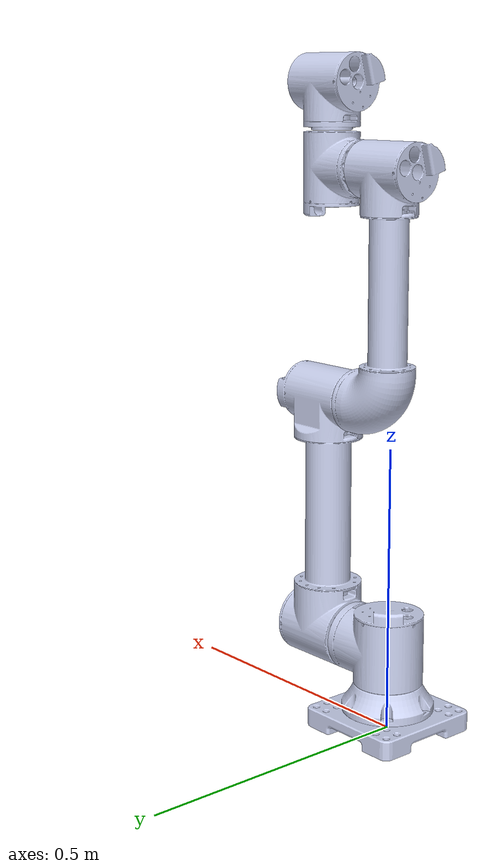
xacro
<?xml version="1.0"?>
<robot xmlns:xacro="http://www.ros.org/wiki/xacro" name="fake_ur_config">

  <xacro:arg name="use_gazebo" default="true" />

  <xacro:include filename="$(find fake_ur_config)/config/fake_ur_config.ros2_control.xacro" />

  <xacro:property name="use_gazebo_prop" value="$(arg use_gazebo)" />
  <xacro:motor_drive use_gazebo="${use_gazebo_prop}"/>

  <xacro:include filename="$(find fake_ur_config)/config/fake_ur_config.urdf" />
</robot>

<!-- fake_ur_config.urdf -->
<robot name="fake_ur" xmlns:xacro="http://www.ros.org/wiki/xacro">

  <xacro:macro name="fake_ur">
  <link
    name="base_link">
    <inertial>
      <origin
        xyz="-1.32903356359508E-12 -5.95336903906293E-12 0.0338776670857649"
        rpy="0 0 0" />
      <mass
        value="1.44940327015999" />
      <inertia
        ixx="0.00492881883825976"
        ixy="8.32451425175137E-10"
        ixz="-2.25385858188084E-13"
        iyy="0.00492878171505367"
        iyz="-2.84223274357211E-13"
        izz="0.00951858321864677" />
    </inertial>
    <visual>
      <origin
        xyz="0 0 0"
        rpy="0 0 0" />
      <geometry>
        <mesh
          filename="package://fake_ur_config/meshes/base_link.STL" />
      </geometry>
      <material
        name="">
        <color
          rgba="0.792156862745098 0.819607843137255 0.933333333333333 1" />
      </material>
    </visual>
  </link>
  <link
    name="link0">
    <inertial>
      <origin
        xyz="0.03008 -0.00078887 -0.15015"
        rpy="0 0 0" />
      <mass
        value="0.55122" />
      <inertia
        ixx="0.0014776"
        ixy="-1.0447E-05"
        ixz="2.7138E-05"
        iyy="0.0014029"
        iyz="-2.7658E-06"
        izz="0.0016816" />
    </inertial>
    <visual>
      <origin
        xyz="0 0 0"
        rpy="0 0 0" />
      <geometry>
        <mesh
          filename="package://fake_ur_config/meshes/link0.STL" />
      </geometry>
      <material
        name="">
        <color
          rgba="0.79216 0.81961 0.93333 1" />
      </material>
    </visual>
  </link>
  <joint
    name="joint0"
    type="revolute">
    <origin
      xyz="0 0 0"
      rpy="-3.1416 0 0" />
    <parent
      link="base_link" />
    <child
      link="link0" />
    <axis
      xyz="0 0 -1" />
    <limit
      lower="${-2*pi}"
      upper="${2*pi}"
      effort="1000"
      velocity="${pi/4}" />
  </joint>
  <link
    name="link1">
    <inertial>
      <origin
        xyz="-0.20372 1.2374E-05 0.062279"
        rpy="0 0 0" />
      <mass
        value="1.3035" />
      <inertia
        ixx="0.0030298"
        ixy="5.2435E-06"
        ixz="-1.254E-05"
        iyy="0.0069434"
        iyz="1.5844E-06"
        izz="0.0073271" />
    </inertial>
    <visual>
      <origin
        xyz="0 0 0"
        rpy="0 0 0" />
      <geometry>
        <mesh
          filename="package://fake_ur_config/meshes/link1.STL" />
      </geometry>
      <material
        name="">
        <color
          rgba="0.79216 0.81961 0.93333 1" />
      </material>
    </visual>
  </link>
  <joint
    name="joint1"
    type="revolute">
    <origin
      xyz="0.222 0 -0.1458"
      rpy="0 -1.5708 0" />
    <parent
      link="link0" />
    <child
      link="link1" />
    <axis
      xyz="0 0 -1" />
    <limit
      lower="${-pi}"
      upper="${pi}"
      effort="1000"
      velocity="${pi/4}" />
  </joint>
  <link
    name="link2">
    <inertial>
      <origin
        xyz="-0.131 0.00035541 0.19747"
        rpy="0 0 0" />
      <mass
        value="1.1247" />
      <inertia
        ixx="0.0018925"
        ixy="4.5428E-06"
        ixz="0.00014485"
        iyy="0.0036587"
        iyz="-2.8498E-06"
        izz="0.003735" />
    </inertial>
    <visual>
      <origin
        xyz="0 0 0"
        rpy="0 0 0" />
      <geometry>
        <mesh
          filename="package://fake_ur_config/meshes/link2.STL" />
      </geometry>
      <material
        name="">
        <color
          rgba="0.79216 0.81961 0.93333 1" />
      </material>
    </visual>
  </link>
  <joint
    name="joint2"
    type="revolute">
    <origin
      xyz="-0.425 0 -0.001"
      rpy="0 0 0" />
    <parent
      link="link1" />
    <child
      link="link2" />
    <axis
      xyz="0 0 1" />
    <limit
      lower="${-pi}"
      upper="${pi}"
      effort="1000"
      velocity="${pi/4}" />
  </joint>
  <link
    name="link3">
    <inertial>
      <origin
        xyz="0.0043197 0.001231 0.05645"
        rpy="0 0 0" />
      <mass
        value="0.32299" />
      <inertia
        ixx="0.00061621"
        ixy="-3.1008E-06"
        ixz="1.9191E-05"
        iyy="0.00058589"
        iyz="-4.5458E-06"
        izz="0.00059346" />
    </inertial>
    <visual>
      <origin
        xyz="0 0 0"
        rpy="0 0 0" />
      <geometry>
        <mesh
          filename="package://fake_ur_config/meshes/link3.STL" />
      </geometry>
      <material
        name="">
        <color
          rgba="0.79216 0.81961 0.93333 1" />
      </material>
    </visual>
  </link>
  <joint
    name="joint3"
    type="revolute">
    <origin
      xyz="-0.392 0 0.15325"
      rpy="-3.1416 0 0" />
    <parent
      link="link2" />
    <child
      link="link3" />
    <axis
      xyz="0 0 1" />
    <limit
      lower="${-pi}"
      upper="${pi}"
      effort="1000"
      velocity="${pi/4}" />
  </joint>
  <link
    name="link4">
    <inertial>
      <origin
        xyz="0.0043201 0.0012307 0.056451"
        rpy="0 0 0" />
      <mass
        value="0.32298" />
      <inertia
        ixx="0.00061621"
        ixy="-3.1003E-06"
        ixz="1.919E-05"
        iyy="0.00058589"
        iyz="-4.5457E-06"
        izz="0.00059346" />
    </inertial>
    <visual>
      <origin
        xyz="0 0 0"
        rpy="0 0 0" />
      <geometry>
        <mesh
          filename="package://fake_ur_config/meshes/link4.STL" />
      </geometry>
      <material
        name="">
        <color
          rgba="0.79216 0.81961 0.93333 1" />
      </material>
    </visual>
  </link>
  <joint
    name="joint4"
    type="revolute">
    <origin
      xyz="-0.05865 0 0.0815"
      rpy="1.5932 1.5708 -1.5484" />
    <parent
      link="link3" />
    <child
      link="link4" />
    <axis
      xyz="0 0 1" />
    <limit
      lower="${-pi}"
      upper="${pi}"
      effort="1000"
      velocity="${pi/4}" />
  </joint>
  <link
    name="link5">
    <inertial>
      <origin
        xyz="-1.0356E-09 1.7E-15 -0.022858"
        rpy="0 0 0" />
      <mass
        value="0.021201" />
      <inertia
        ixx="1.4705E-05"
        ixy="2.6737E-19"
        ixz="-2.7185E-13"
        iyy="1.4705E-05"
        iyz="-1.4643E-18"
        izz="8.7048E-06" />
    </inertial>
    <visual>
      <origin
        xyz="0 0 0"
        rpy="0 0 0" />
      <geometry>
        <mesh
          filename="package://fake_ur_config/meshes/link5.STL" />
      </geometry>
      <material
        name="">
        <color
          rgba="0.79216 0.81961 0.93333 1" />
      </material>
    </visual>
  </link>
  <joint
    name="joint5"
    type="revolute">
    <origin
      xyz="-0.06345 0 0.0815"
      rpy="3.1416 1.5708 0" />
    <parent
      link="link4" />
    <child
      link="link5" />
    <axis
      xyz="0 0 1" />
    <limit
      lower="${-pi}"
      upper="${pi}"
      effort="1000"
      velocity="${pi/4}" />
  </joint>
  <link name="world"/>
  <joint name="base_joint" type="fixed">
    <parent link="world"/>
    <child link="base_link"/>
    <origin xyz="0 0 0" rpy="0 0 0"/>
    <axis xyz="0 0 1"/>
  </joint>
  </xacro:macro>
  <gazebo>
    <plugin filename="gz_ros2_control-system" name="gz_ros2_control::GazeboSimROS2ControlPlugin">
      <parameters>$(find fake_ur_config)/config/ros2_controllers.yaml</parameters>
    </plugin>
  </gazebo>
  <xacro:fake_ur/>
</robot>
